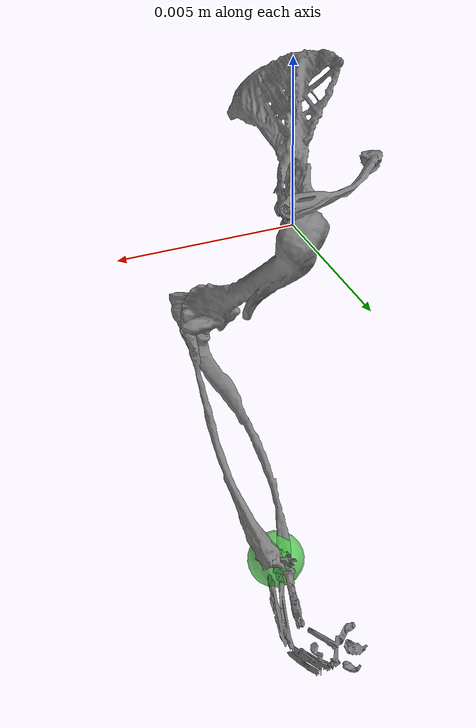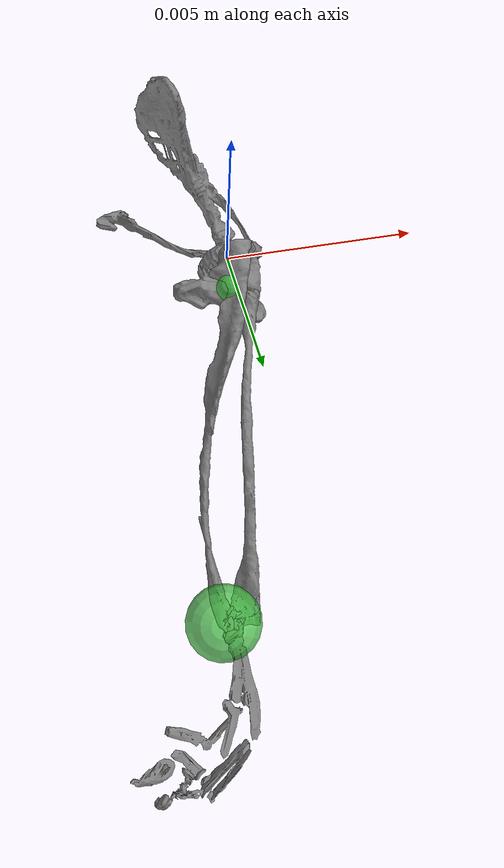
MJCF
<?xml version="1.0" encoding="utf-8"?>
<mujoco model="mouse">
	<option timestep="0.001" gravity="0 0 0"/>
	<size njmax="1000" nconmax="400" nkey="1" nuser_jnt="1"/>
	<asset>
		<texture type="skybox" builtin="gradient" rgb1="1 1 1" rgb2="0.6 0.8 1" width="256" height="1536"/>
		<texture name="grid" type="2d" builtin="checker" width="512" height="512" rgb1=".1 .2 .3" rgb2=".2 .3 .4"/>
		<material name="grid" texture="grid" texrepeat="1 1" texuniform="true" reflectance=".2"/>
		<mesh file="/root/vast/joshua/stac-mjx/meshes/stl/Bone_Scapula_right_v3.stl"/>
		<mesh file="/root/vast/joshua/stac-mjx/meshes/stl/Bone_Humerus_right_v3.stl"/>
		<mesh file="/root/vast/joshua/stac-mjx/meshes/stl/Bone_Clavicle_right_v3.stl"/>
		<mesh file="/root/vast/joshua/stac-mjx/meshes/stl/Bone_Ulna_right_v3.stl"/>
		<mesh file="/root/vast/joshua/stac-mjx/meshes/stl/Bone_Radius_right_v3.stl"/>
		<mesh file="/root/vast/joshua/stac-mjx/meshes/stl/Bone_Segments_Hand.stl"/>

	</asset>
	<worldbody>
		<light directional="true"/>
		<body name="ground" euler="0 0 0">
			<camera name="my_camera" pos="0.04 .004 0.037" fovy="20" quat="0.6532815 0.2705981 0.2705981 0.6532815"/>
			<camera name="my_camera1" pos="0.04 .004 0.037" fovy="20" quat="0.6532815 0.2705981 0.2705981 0.6532815"/>

			<!--SOB Clavicle-->
			<body name="clavicle" pos="0 0 0" euler="0 0 0">
				<!--Mesh Geom-->
				<geom type="mesh" mesh="Bone_Clavicle_right_v3" pos="0 0 0.0005"/>

				<!--SOB Scapula-->
				<body name="scapula" pos="-0.0001 -0.0001 0.0005" euler="-30 -15 0">
					<!--Mesh Geom-->
					<geom type="mesh" mesh="Bone_Scapula_right_v3" pos="0.0 0.0 0.0"/>

					<!--SOB Humerus-->
					<body name="humerus" pos="0 0.0007 -0.0002" euler="-15 0 0">
						<!-- Glenohumeral (aka shoulder) Joint-->
						<inertial pos="-0.0005 0.0003 -0.004" mass="0.0001258" diaginertia="3e-8 3e-8 3e-8"/>
												<!--Mesh Geom-->
						<geom type="mesh" mesh="Bone_Humerus_right_v3" pos="0.0 0.0 0.0"/>

						<joint name="sh_elv" type="hinge" pos="0 0 0" axis="0 1 0" damping="0.001" range="-70 0" limited="true"/>
						<!-- Extension Joint: Yaw around Z-axis -->
						<joint name="sh_extension" type="hinge" pos="0 0 0" axis="0 0 1" damping="0.001" range="-70 40" limited="true"/>
						<!-- Rotation Joint: Roll around X-axis -->
						<joint name="sh_rotation" type="hinge" pos="0 0 0" axis="1 0 0" damping="0.001" range="-25 89" limited="true"/>

						<!--SOB Ulna-->
						<body name="ulna" pos="-0.0005 0.0003 -0.0068" euler="-15 0 0">
							<!--Mesh Geom-->
							<geom type="mesh" mesh="Bone_Ulna_right_v3" pos="0.0 0.0 0.0"/>

							<!-- Elbow Joint -->
							<joint name="elbow_joint" pos="0 0 0" axis="1 0 0" stiffness="0.000001" damping="0.00001" range="-80 90" limited="true"/>
							<inertial pos="-0.0009 0.004 0.0005" mass="0.0001258" diaginertia="3e-8 3e-8 3e-8"/>

							<body name="elbow" pos="0.0 0.0 0.0" euler="0 0 0">
								<geom name="elbow_marker" type="sphere" size="0.0003" pos="0 0 0" contype="0" conaffinity="0" rgba="0.3 0.8 0.3 0.8" />

								<!--SOB Radius-->
								<body name="radius" pos="0.00035 0.0002 0.0002" euler="0 0 0">
									<!--Mesh Geom-->
									<geom type="mesh" mesh="Bone_Radius_right_v3" pos="0.0 0.0 0.0"/>
									<body name="wrist_body" pos="-0.002 0.0065 0.0005" euler="0 0 0">
										<geom name="wrist_marker" type="sphere" size="0.0008" pos="0 0 0" contype="0" conaffinity="0" rgba="0.3 0.8 0.3 0.8" />
										<body name="hand" pos=".005 -.006 -0.009" euler="-15 -15 -45">
											<geom type="mesh" mesh="Bone_Segments_Hand" pos="0 0 0"/>
											<inertial pos="-0.0048 0.0019 0.012" mass=" 0.00071" diaginertia="7e-08 7e-08 7e-08"/>
										</body>
									</body>
								</body>
							</body>
						</body>
					</body>
				</body>
				<!--EOB Ground-->
			</body>
		</body>
	</worldbody>
	<actuator>
		<motor name="sh_elv_act" joint="sh_elv" ctrllimited="true" ctrlrange="-1 1" forcerange="-.001 .001"/>
		<motor name="sh_extension_act" joint="sh_extension" ctrllimited="true" ctrlrange="-1 1" forcerange="-.001 .001"/>
		<motor name="sh_rotation_act" joint="sh_rotation" ctrllimited="true" ctrlrange="-1 1" forcerange="-.001 .001"/>
		<motor name="elbow_act" joint="elbow_joint" ctrllimited="true" ctrlrange="-1 1" forcerange="-.0001 .0001"/>
	</actuator>
</mujoco>
